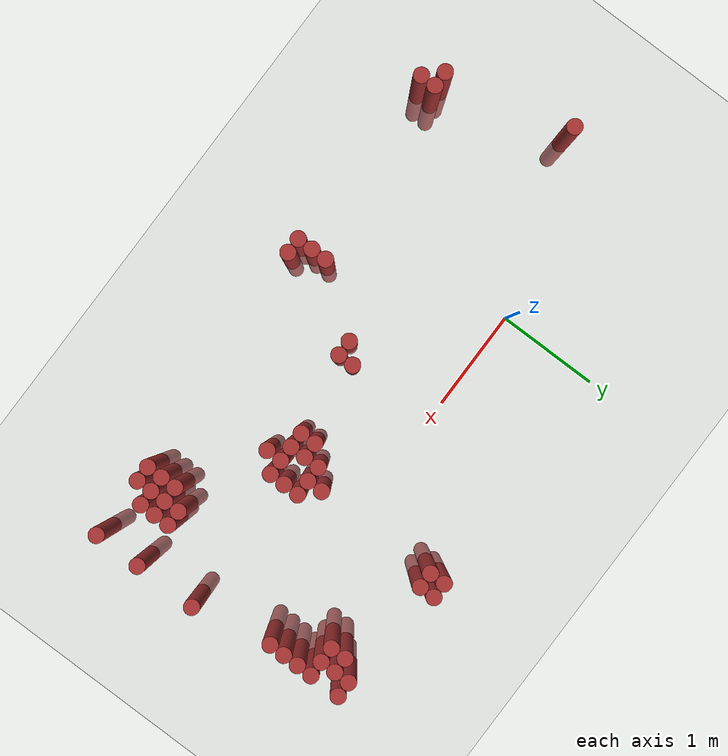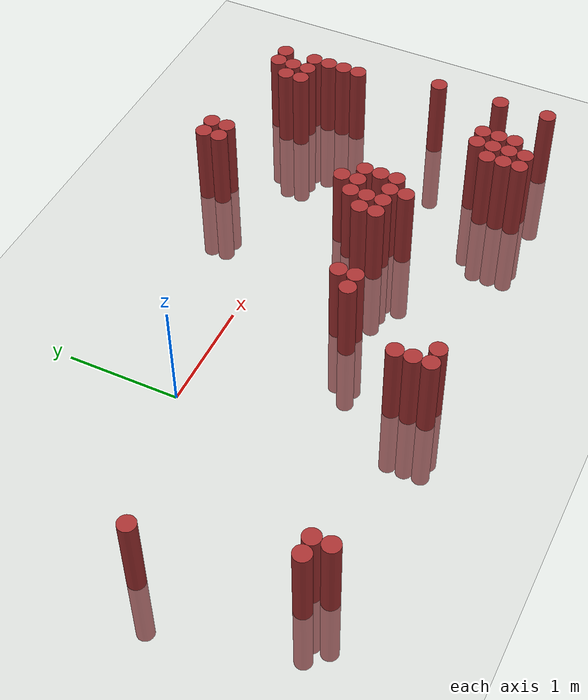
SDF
<sdf version="1.6">
 <world name="default">
  <model name="ground_plane">
   <static>1</static>
   <link name="link">
    <collision name="collision">
     <geometry><plane><normal>0 0 1</normal><size>100 100</size></plane></geometry>
     <surface><friction><ode><mu>100</mu><mu2>50</mu2></ode></friction></surface>
    </collision>
    <visual name="visual">
     <cast_shadows>0</cast_shadows>
     <geometry><plane><normal>0 0 1</normal><size>100 100</size></plane></geometry>
     <material>
      <script><uri>file://media/materials/scripts/gazebo.material</uri><name>Gazebo/Grey</name></script>
     </material>
    </visual>
   </link>
  </model>
  <model name="unit_cylinder_326">
   <static>1</static>
   <pose>-1.625000 -0.575000 0.000000 0.000000 0.000000 0.000000</pose>
   <link name="link">
    <inertial>
     <mass>1</mass>
     <inertia><ixx>0.145833</ixx><ixy>0</ixy><ixz>0</ixz><iyy>0.145833</iyy><iyz>0</iyz><izz>0.125</izz></inertia>
    </inertial>
    <collision name="collision">
     <geometry><cylinder><radius>0.075000</radius><length>1.5</length></cylinder></geometry>
    </collision>
    <visual name="visual">
     <geometry><cylinder><radius>0.075000</radius><length>1.5</length></cylinder></geometry>
     <material>
      <ambient>0.648000 0.192000 0.192000 1</ambient>
      <diffuse>0.648000 0.192000 0.192000 1</diffuse>
     </material>
     <material>
      <script><name>Gazebo/Grey</name><uri>file://media/materials/scripts/gazebo.material</uri></script>
     </material>
    </visual>
   </link>
  </model>
  <model name="unit_cylinder_327">
   <static>1</static>
   <pose>-1.325000 -1.775000 0.000000 0.000000 0.000000 0.000000</pose>
   <link name="link">
    <inertial>
     <mass>1</mass>
     <inertia><ixx>0.145833</ixx><ixy>0</ixy><ixz>0</ixz><iyy>0.145833</iyy><iyz>0</iyz><izz>0.125</izz></inertia>
    </inertial>
    <collision name="collision">
     <geometry><cylinder><radius>0.075000</radius><length>1.5</length></cylinder></geometry>
    </collision>
    <visual name="visual">
     <geometry><cylinder><radius>0.075000</radius><length>1.5</length></cylinder></geometry>
     <material>
      <ambient>0.648000 0.192000 0.192000 1</ambient>
      <diffuse>0.648000 0.192000 0.192000 1</diffuse>
     </material>
     <material>
      <script><name>Gazebo/Grey</name><uri>file://media/materials/scripts/gazebo.material</uri></script>
     </material>
    </visual>
   </link>
  </model>
  <model name="unit_cylinder_329">
   <static>1</static>
   <pose>-1.175000 -1.925000 0.000000 0.000000 0.000000 0.000000</pose>
   <link name="link">
    <inertial>
     <mass>1</mass>
     <inertia><ixx>0.145833</ixx><ixy>0</ixy><ixz>0</ixz><iyy>0.145833</iyy><iyz>0</iyz><izz>0.125</izz></inertia>
    </inertial>
    <collision name="collision">
     <geometry><cylinder><radius>0.075000</radius><length>1.5</length></cylinder></geometry>
    </collision>
    <visual name="visual">
     <geometry><cylinder><radius>0.075000</radius><length>1.5</length></cylinder></geometry>
     <material>
      <ambient>0.648000 0.192000 0.192000 1</ambient>
      <diffuse>0.648000 0.192000 0.192000 1</diffuse>
     </material>
     <material>
      <script><name>Gazebo/Grey</name><uri>file://media/materials/scripts/gazebo.material</uri></script>
     </material>
    </visual>
   </link>
  </model>
  <model name="unit_cylinder_330">
   <static>1</static>
   <pose>-1.175000 -1.775000 0.000000 0.000000 0.000000 0.000000</pose>
   <link name="link">
    <inertial>
     <mass>1</mass>
     <inertia><ixx>0.145833</ixx><ixy>0</ixy><ixz>0</ixz><iyy>0.145833</iyy><iyz>0</iyz><izz>0.125</izz></inertia>
    </inertial>
    <collision name="collision">
     <geometry><cylinder><radius>0.075000</radius><length>1.5</length></cylinder></geometry>
    </collision>
    <visual name="visual">
     <geometry><cylinder><radius>0.075000</radius><length>1.5</length></cylinder></geometry>
     <material>
      <ambient>0.648000 0.192000 0.192000 1</ambient>
      <diffuse>0.648000 0.192000 0.192000 1</diffuse>
     </material>
     <material>
      <script><name>Gazebo/Grey</name><uri>file://media/materials/scripts/gazebo.material</uri></script>
     </material>
    </visual>
   </link>
  </model>
  <model name="unit_cylinder_379">
   <static>1</static>
   <pose>0.625000 -1.925000 0.000000 0.000000 0.000000 0.000000</pose>
   <link name="link">
    <inertial>
     <mass>1</mass>
     <inertia><ixx>0.145833</ixx><ixy>0</ixy><ixz>0</ixz><iyy>0.145833</iyy><iyz>0</iyz><izz>0.125</izz></inertia>
    </inertial>
    <collision name="collision">
     <geometry><cylinder><radius>0.075000</radius><length>1.5</length></cylinder></geometry>
    </collision>
    <visual name="visual">
     <geometry><cylinder><radius>0.075000</radius><length>1.5</length></cylinder></geometry>
     <material>
      <ambient>0.648000 0.192000 0.192000 1</ambient>
      <diffuse>0.648000 0.192000 0.192000 1</diffuse>
     </material>
     <material>
      <script><name>Gazebo/Grey</name><uri>file://media/materials/scripts/gazebo.material</uri></script>
     </material>
    </visual>
   </link>
  </model>
  <model name="unit_cylinder_380">
   <static>1</static>
   <pose>0.625000 -1.775000 0.000000 0.000000 0.000000 0.000000</pose>
   <link name="link">
    <inertial>
     <mass>1</mass>
     <inertia><ixx>0.145833</ixx><ixy>0</ixy><ixz>0</ixz><iyy>0.145833</iyy><iyz>0</iyz><izz>0.125</izz></inertia>
    </inertial>
    <collision name="collision">
     <geometry><cylinder><radius>0.075000</radius><length>1.5</length></cylinder></geometry>
    </collision>
    <visual name="visual">
     <geometry><cylinder><radius>0.075000</radius><length>1.5</length></cylinder></geometry>
     <material>
      <ambient>0.648000 0.192000 0.192000 1</ambient>
      <diffuse>0.648000 0.192000 0.192000 1</diffuse>
     </material>
     <material>
      <script><name>Gazebo/Grey</name><uri>file://media/materials/scripts/gazebo.material</uri></script>
     </material>
    </visual>
   </link>
  </model>
  <model name="unit_cylinder_381">
   <static>1</static>
   <pose>0.625000 -1.625000 0.000000 0.000000 0.000000 0.000000</pose>
   <link name="link">
    <inertial>
     <mass>1</mass>
     <inertia><ixx>0.145833</ixx><ixy>0</ixy><ixz>0</ixz><iyy>0.145833</iyy><iyz>0</iyz><izz>0.125</izz></inertia>
    </inertial>
    <collision name="collision">
     <geometry><cylinder><radius>0.075000</radius><length>1.5</length></cylinder></geometry>
    </collision>
    <visual name="visual">
     <geometry><cylinder><radius>0.075000</radius><length>1.5</length></cylinder></geometry>
     <material>
      <ambient>0.648000 0.192000 0.192000 1</ambient>
      <diffuse>0.648000 0.192000 0.192000 1</diffuse>
     </material>
     <material>
      <script><name>Gazebo/Grey</name><uri>file://media/materials/scripts/gazebo.material</uri></script>
     </material>
    </visual>
   </link>
  </model>
  <model name="unit_cylinder_383">
   <static>1</static>
   <pose>0.775000 -1.925000 0.000000 0.000000 0.000000 0.000000</pose>
   <link name="link">
    <inertial>
     <mass>1</mass>
     <inertia><ixx>0.145833</ixx><ixy>0</ixy><ixz>0</ixz><iyy>0.145833</iyy><iyz>0</iyz><izz>0.125</izz></inertia>
    </inertial>
    <collision name="collision">
     <geometry><cylinder><radius>0.075000</radius><length>1.5</length></cylinder></geometry>
    </collision>
    <visual name="visual">
     <geometry><cylinder><radius>0.075000</radius><length>1.5</length></cylinder></geometry>
     <material>
      <ambient>0.648000 0.192000 0.192000 1</ambient>
      <diffuse>0.648000 0.192000 0.192000 1</diffuse>
     </material>
     <material>
      <script><name>Gazebo/Grey</name><uri>file://media/materials/scripts/gazebo.material</uri></script>
     </material>
    </visual>
   </link>
  </model>
  <model name="unit_cylinder_384">
   <static>1</static>
   <pose>1.075000 -1.025000 0.000000 0.000000 0.000000 0.000000</pose>
   <link name="link">
    <inertial>
     <mass>1</mass>
     <inertia><ixx>0.145833</ixx><ixy>0</ixy><ixz>0</ixz><iyy>0.145833</iyy><iyz>0</iyz><izz>0.125</izz></inertia>
    </inertial>
    <collision name="collision">
     <geometry><cylinder><radius>0.075000</radius><length>1.5</length></cylinder></geometry>
    </collision>
    <visual name="visual">
     <geometry><cylinder><radius>0.075000</radius><length>1.5</length></cylinder></geometry>
     <material>
      <ambient>0.648000 0.192000 0.192000 1</ambient>
      <diffuse>0.648000 0.192000 0.192000 1</diffuse>
     </material>
     <material>
      <script><name>Gazebo/Grey</name><uri>file://media/materials/scripts/gazebo.material</uri></script>
     </material>
    </visual>
   </link>
  </model>
  <model name="unit_cylinder_385">
   <static>1</static>
   <pose>1.225000 -1.025000 0.000000 0.000000 0.000000 0.000000</pose>
   <link name="link">
    <inertial>
     <mass>1</mass>
     <inertia><ixx>0.145833</ixx><ixy>0</ixy><ixz>0</ixz><iyy>0.145833</iyy><iyz>0</iyz><izz>0.125</izz></inertia>
    </inertial>
    <collision name="collision">
     <geometry><cylinder><radius>0.075000</radius><length>1.5</length></cylinder></geometry>
    </collision>
    <visual name="visual">
     <geometry><cylinder><radius>0.075000</radius><length>1.5</length></cylinder></geometry>
     <material>
      <ambient>0.648000 0.192000 0.192000 1</ambient>
      <diffuse>0.648000 0.192000 0.192000 1</diffuse>
     </material>
     <material>
      <script><name>Gazebo/Grey</name><uri>file://media/materials/scripts/gazebo.material</uri></script>
     </material>
    </visual>
   </link>
  </model>
  <model name="unit_cylinder_386">
   <static>1</static>
   <pose>1.225000 -0.875000 0.000000 0.000000 0.000000 0.000000</pose>
   <link name="link">
    <inertial>
     <mass>1</mass>
     <inertia><ixx>0.145833</ixx><ixy>0</ixy><ixz>0</ixz><iyy>0.145833</iyy><iyz>0</iyz><izz>0.125</izz></inertia>
    </inertial>
    <collision name="collision">
     <geometry><cylinder><radius>0.075000</radius><length>1.5</length></cylinder></geometry>
    </collision>
    <visual name="visual">
     <geometry><cylinder><radius>0.075000</radius><length>1.5</length></cylinder></geometry>
     <material>
      <ambient>0.648000 0.192000 0.192000 1</ambient>
      <diffuse>0.648000 0.192000 0.192000 1</diffuse>
     </material>
     <material>
      <script><name>Gazebo/Grey</name><uri>file://media/materials/scripts/gazebo.material</uri></script>
     </material>
    </visual>
   </link>
  </model>
  <model name="unit_cylinder_390">
   <static>1</static>
   <pose>1.975000 -0.875000 0.000000 0.000000 0.000000 0.000000</pose>
   <link name="link">
    <inertial>
     <mass>1</mass>
     <inertia><ixx>0.145833</ixx><ixy>0</ixy><ixz>0</ixz><iyy>0.145833</iyy><iyz>0</iyz><izz>0.125</izz></inertia>
    </inertial>
    <collision name="collision">
     <geometry><cylinder><radius>0.075000</radius><length>1.5</length></cylinder></geometry>
    </collision>
    <visual name="visual">
     <geometry><cylinder><radius>0.075000</radius><length>1.5</length></cylinder></geometry>
     <material>
      <ambient>0.648000 0.192000 0.192000 1</ambient>
      <diffuse>0.648000 0.192000 0.192000 1</diffuse>
     </material>
     <material>
      <script><name>Gazebo/Grey</name><uri>file://media/materials/scripts/gazebo.material</uri></script>
     </material>
    </visual>
   </link>
  </model>
  <model name="unit_cylinder_391">
   <static>1</static>
   <pose>1.975000 -0.725000 0.000000 0.000000 0.000000 0.000000</pose>
   <link name="link">
    <inertial>
     <mass>1</mass>
     <inertia><ixx>0.145833</ixx><ixy>0</ixy><ixz>0</ixz><iyy>0.145833</iyy><iyz>0</iyz><izz>0.125</izz></inertia>
    </inertial>
    <collision name="collision">
     <geometry><cylinder><radius>0.075000</radius><length>1.5</length></cylinder></geometry>
    </collision>
    <visual name="visual">
     <geometry><cylinder><radius>0.075000</radius><length>1.5</length></cylinder></geometry>
     <material>
      <ambient>0.648000 0.192000 0.192000 1</ambient>
      <diffuse>0.648000 0.192000 0.192000 1</diffuse>
     </material>
     <material>
      <script><name>Gazebo/Grey</name><uri>file://media/materials/scripts/gazebo.material</uri></script>
     </material>
    </visual>
   </link>
  </model>
  <model name="unit_cylinder_392">
   <static>1</static>
   <pose>2.125000 -0.875000 0.000000 0.000000 0.000000 0.000000</pose>
   <link name="link">
    <inertial>
     <mass>1</mass>
     <inertia><ixx>0.145833</ixx><ixy>0</ixy><ixz>0</ixz><iyy>0.145833</iyy><iyz>0</iyz><izz>0.125</izz></inertia>
    </inertial>
    <collision name="collision">
     <geometry><cylinder><radius>0.075000</radius><length>1.5</length></cylinder></geometry>
    </collision>
    <visual name="visual">
     <geometry><cylinder><radius>0.075000</radius><length>1.5</length></cylinder></geometry>
     <material>
      <ambient>0.648000 0.192000 0.192000 1</ambient>
      <diffuse>0.648000 0.192000 0.192000 1</diffuse>
     </material>
     <material>
      <script><name>Gazebo/Grey</name><uri>file://media/materials/scripts/gazebo.material</uri></script>
     </material>
    </visual>
   </link>
  </model>
  <model name="unit_cylinder_393">
   <static>1</static>
   <pose>2.125000 -0.725000 0.000000 0.000000 0.000000 0.000000</pose>
   <link name="link">
    <inertial>
     <mass>1</mass>
     <inertia><ixx>0.145833</ixx><ixy>0</ixy><ixz>0</ixz><iyy>0.145833</iyy><iyz>0</iyz><izz>0.125</izz></inertia>
    </inertial>
    <collision name="collision">
     <geometry><cylinder><radius>0.075000</radius><length>1.5</length></cylinder></geometry>
    </collision>
    <visual name="visual">
     <geometry><cylinder><radius>0.075000</radius><length>1.5</length></cylinder></geometry>
     <material>
      <ambient>0.648000 0.192000 0.192000 1</ambient>
      <diffuse>0.648000 0.192000 0.192000 1</diffuse>
     </material>
     <material>
      <script><name>Gazebo/Grey</name><uri>file://media/materials/scripts/gazebo.material</uri></script>
     </material>
    </visual>
   </link>
  </model>
  <model name="unit_cylinder_394">
   <static>1</static>
   <pose>2.125000 -0.575000 0.000000 0.000000 0.000000 0.000000</pose>
   <link name="link">
    <inertial>
     <mass>1</mass>
     <inertia><ixx>0.145833</ixx><ixy>0</ixy><ixz>0</ixz><iyy>0.145833</iyy><iyz>0</iyz><izz>0.125</izz></inertia>
    </inertial>
    <collision name="collision">
     <geometry><cylinder><radius>0.075000</radius><length>1.5</length></cylinder></geometry>
    </collision>
    <visual name="visual">
     <geometry><cylinder><radius>0.075000</radius><length>1.5</length></cylinder></geometry>
     <material>
      <ambient>0.648000 0.192000 0.192000 1</ambient>
      <diffuse>0.648000 0.192000 0.192000 1</diffuse>
     </material>
     <material>
      <script><name>Gazebo/Grey</name><uri>file://media/materials/scripts/gazebo.material</uri></script>
     </material>
    </visual>
   </link>
  </model>
  <model name="unit_cylinder_395">
   <static>1</static>
   <pose>2.275000 -1.025000 0.000000 0.000000 0.000000 0.000000</pose>
   <link name="link">
    <inertial>
     <mass>1</mass>
     <inertia><ixx>0.145833</ixx><ixy>0</ixy><ixz>0</ixz><iyy>0.145833</iyy><iyz>0</iyz><izz>0.125</izz></inertia>
    </inertial>
    <collision name="collision">
     <geometry><cylinder><radius>0.075000</radius><length>1.5</length></cylinder></geometry>
    </collision>
    <visual name="visual">
     <geometry><cylinder><radius>0.075000</radius><length>1.5</length></cylinder></geometry>
     <material>
      <ambient>0.648000 0.192000 0.192000 1</ambient>
      <diffuse>0.648000 0.192000 0.192000 1</diffuse>
     </material>
     <material>
      <script><name>Gazebo/Grey</name><uri>file://media/materials/scripts/gazebo.material</uri></script>
     </material>
    </visual>
   </link>
  </model>
  <model name="unit_cylinder_396">
   <static>1</static>
   <pose>2.275000 -0.875000 0.000000 0.000000 0.000000 0.000000</pose>
   <link name="link">
    <inertial>
     <mass>1</mass>
     <inertia><ixx>0.145833</ixx><ixy>0</ixy><ixz>0</ixz><iyy>0.145833</iyy><iyz>0</iyz><izz>0.125</izz></inertia>
    </inertial>
    <collision name="collision">
     <geometry><cylinder><radius>0.075000</radius><length>1.5</length></cylinder></geometry>
    </collision>
    <visual name="visual">
     <geometry><cylinder><radius>0.075000</radius><length>1.5</length></cylinder></geometry>
     <material>
      <ambient>0.648000 0.192000 0.192000 1</ambient>
      <diffuse>0.648000 0.192000 0.192000 1</diffuse>
     </material>
     <material>
      <script><name>Gazebo/Grey</name><uri>file://media/materials/scripts/gazebo.material</uri></script>
     </material>
    </visual>
   </link>
  </model>
  <model name="unit_cylinder_397">
   <static>1</static>
   <pose>2.275000 -0.575000 0.000000 0.000000 0.000000 0.000000</pose>
   <link name="link">
    <inertial>
     <mass>1</mass>
     <inertia><ixx>0.145833</ixx><ixy>0</ixy><ixz>0</ixz><iyy>0.145833</iyy><iyz>0</iyz><izz>0.125</izz></inertia>
    </inertial>
    <collision name="collision">
     <geometry><cylinder><radius>0.075000</radius><length>1.5</length></cylinder></geometry>
    </collision>
    <visual name="visual">
     <geometry><cylinder><radius>0.075000</radius><length>1.5</length></cylinder></geometry>
     <material>
      <ambient>0.648000 0.192000 0.192000 1</ambient>
      <diffuse>0.648000 0.192000 0.192000 1</diffuse>
     </material>
     <material>
      <script><name>Gazebo/Grey</name><uri>file://media/materials/scripts/gazebo.material</uri></script>
     </material>
    </visual>
   </link>
  </model>
  <model name="unit_cylinder_398">
   <static>1</static>
   <pose>2.275000 -0.425000 0.000000 0.000000 0.000000 0.000000</pose>
   <link name="link">
    <inertial>
     <mass>1</mass>
     <inertia><ixx>0.145833</ixx><ixy>0</ixy><ixz>0</ixz><iyy>0.145833</iyy><iyz>0</iyz><izz>0.125</izz></inertia>
    </inertial>
    <collision name="collision">
     <geometry><cylinder><radius>0.075000</radius><length>1.5</length></cylinder></geometry>
    </collision>
    <visual name="visual">
     <geometry><cylinder><radius>0.075000</radius><length>1.5</length></cylinder></geometry>
     <material>
      <ambient>0.648000 0.192000 0.192000 1</ambient>
      <diffuse>0.648000 0.192000 0.192000 1</diffuse>
     </material>
     <material>
      <script><name>Gazebo/Grey</name><uri>file://media/materials/scripts/gazebo.material</uri></script>
     </material>
    </visual>
   </link>
  </model>
  <model name="unit_cylinder_399">
   <static>1</static>
   <pose>2.275000 0.775000 0.000000 0.000000 0.000000 0.000000</pose>
   <link name="link">
    <inertial>
     <mass>1</mass>
     <inertia><ixx>0.145833</ixx><ixy>0</ixy><ixz>0</ixz><iyy>0.145833</iyy><iyz>0</iyz><izz>0.125</izz></inertia>
    </inertial>
    <collision name="collision">
     <geometry><cylinder><radius>0.075000</radius><length>1.5</length></cylinder></geometry>
    </collision>
    <visual name="visual">
     <geometry><cylinder><radius>0.075000</radius><length>1.5</length></cylinder></geometry>
     <material>
      <ambient>0.648000 0.192000 0.192000 1</ambient>
      <diffuse>0.648000 0.192000 0.192000 1</diffuse>
     </material>
     <material>
      <script><name>Gazebo/Grey</name><uri>file://media/materials/scripts/gazebo.material</uri></script>
     </material>
    </visual>
   </link>
  </model>
  <model name="unit_cylinder_400">
   <static>1</static>
   <pose>2.275000 0.925000 0.000000 0.000000 0.000000 0.000000</pose>
   <link name="link">
    <inertial>
     <mass>1</mass>
     <inertia><ixx>0.145833</ixx><ixy>0</ixy><ixz>0</ixz><iyy>0.145833</iyy><iyz>0</iyz><izz>0.125</izz></inertia>
    </inertial>
    <collision name="collision">
     <geometry><cylinder><radius>0.075000</radius><length>1.5</length></cylinder></geometry>
    </collision>
    <visual name="visual">
     <geometry><cylinder><radius>0.075000</radius><length>1.5</length></cylinder></geometry>
     <material>
      <ambient>0.648000 0.192000 0.192000 1</ambient>
      <diffuse>0.648000 0.192000 0.192000 1</diffuse>
     </material>
     <material>
      <script><name>Gazebo/Grey</name><uri>file://media/materials/scripts/gazebo.material</uri></script>
     </material>
    </visual>
   </link>
  </model>
  <model name="unit_cylinder_401">
   <static>1</static>
   <pose>2.425000 -0.875000 0.000000 0.000000 0.000000 0.000000</pose>
   <link name="link">
    <inertial>
     <mass>1</mass>
     <inertia><ixx>0.145833</ixx><ixy>0</ixy><ixz>0</ixz><iyy>0.145833</iyy><iyz>0</iyz><izz>0.125</izz></inertia>
    </inertial>
    <collision name="collision">
     <geometry><cylinder><radius>0.075000</radius><length>1.5</length></cylinder></geometry>
    </collision>
    <visual name="visual">
     <geometry><cylinder><radius>0.075000</radius><length>1.5</length></cylinder></geometry>
     <material>
      <ambient>0.648000 0.192000 0.192000 1</ambient>
      <diffuse>0.648000 0.192000 0.192000 1</diffuse>
     </material>
     <material>
      <script><name>Gazebo/Grey</name><uri>file://media/materials/scripts/gazebo.material</uri></script>
     </material>
    </visual>
   </link>
  </model>
  <model name="unit_cylinder_402">
   <static>1</static>
   <pose>2.425000 -0.725000 0.000000 0.000000 0.000000 0.000000</pose>
   <link name="link">
    <inertial>
     <mass>1</mass>
     <inertia><ixx>0.145833</ixx><ixy>0</ixy><ixz>0</ixz><iyy>0.145833</iyy><iyz>0</iyz><izz>0.125</izz></inertia>
    </inertial>
    <collision name="collision">
     <geometry><cylinder><radius>0.075000</radius><length>1.5</length></cylinder></geometry>
    </collision>
    <visual name="visual">
     <geometry><cylinder><radius>0.075000</radius><length>1.5</length></cylinder></geometry>
     <material>
      <ambient>0.648000 0.192000 0.192000 1</ambient>
      <diffuse>0.648000 0.192000 0.192000 1</diffuse>
     </material>
     <material>
      <script><name>Gazebo/Grey</name><uri>file://media/materials/scripts/gazebo.material</uri></script>
     </material>
    </visual>
   </link>
  </model>
  <model name="unit_cylinder_403">
   <static>1</static>
   <pose>2.425000 -0.575000 0.000000 0.000000 0.000000 0.000000</pose>
   <link name="link">
    <inertial>
     <mass>1</mass>
     <inertia><ixx>0.145833</ixx><ixy>0</ixy><ixz>0</ixz><iyy>0.145833</iyy><iyz>0</iyz><izz>0.125</izz></inertia>
    </inertial>
    <collision name="collision">
     <geometry><cylinder><radius>0.075000</radius><length>1.5</length></cylinder></geometry>
    </collision>
    <visual name="visual">
     <geometry><cylinder><radius>0.075000</radius><length>1.5</length></cylinder></geometry>
     <material>
      <ambient>0.648000 0.192000 0.192000 1</ambient>
      <diffuse>0.648000 0.192000 0.192000 1</diffuse>
     </material>
     <material>
      <script><name>Gazebo/Grey</name><uri>file://media/materials/scripts/gazebo.material</uri></script>
     </material>
    </visual>
   </link>
  </model>
  <model name="unit_cylinder_404">
   <static>1</static>
   <pose>2.425000 0.775000 0.000000 0.000000 0.000000 0.000000</pose>
   <link name="link">
    <inertial>
     <mass>1</mass>
     <inertia><ixx>0.145833</ixx><ixy>0</ixy><ixz>0</ixz><iyy>0.145833</iyy><iyz>0</iyz><izz>0.125</izz></inertia>
    </inertial>
    <collision name="collision">
     <geometry><cylinder><radius>0.075000</radius><length>1.5</length></cylinder></geometry>
    </collision>
    <visual name="visual">
     <geometry><cylinder><radius>0.075000</radius><length>1.5</length></cylinder></geometry>
     <material>
      <ambient>0.648000 0.192000 0.192000 1</ambient>
      <diffuse>0.648000 0.192000 0.192000 1</diffuse>
     </material>
     <material>
      <script><name>Gazebo/Grey</name><uri>file://media/materials/scripts/gazebo.material</uri></script>
     </material>
    </visual>
   </link>
  </model>
  <model name="unit_cylinder_405">
   <static>1</static>
   <pose>2.425000 0.925000 0.000000 0.000000 0.000000 0.000000</pose>
   <link name="link">
    <inertial>
     <mass>1</mass>
     <inertia><ixx>0.145833</ixx><ixy>0</ixy><ixz>0</ixz><iyy>0.145833</iyy><iyz>0</iyz><izz>0.125</izz></inertia>
    </inertial>
    <collision name="collision">
     <geometry><cylinder><radius>0.075000</radius><length>1.5</length></cylinder></geometry>
    </collision>
    <visual name="visual">
     <geometry><cylinder><radius>0.075000</radius><length>1.5</length></cylinder></geometry>
     <material>
      <ambient>0.648000 0.192000 0.192000 1</ambient>
      <diffuse>0.648000 0.192000 0.192000 1</diffuse>
     </material>
     <material>
      <script><name>Gazebo/Grey</name><uri>file://media/materials/scripts/gazebo.material</uri></script>
     </material>
    </visual>
   </link>
  </model>
  <model name="unit_cylinder_413">
   <static>1</static>
   <pose>3.025000 -1.775000 0.000000 0.000000 0.000000 0.000000</pose>
   <link name="link">
    <inertial>
     <mass>1</mass>
     <inertia><ixx>0.145833</ixx><ixy>0</ixy><ixz>0</ixz><iyy>0.145833</iyy><iyz>0</iyz><izz>0.125</izz></inertia>
    </inertial>
    <collision name="collision">
     <geometry><cylinder><radius>0.075000</radius><length>1.5</length></cylinder></geometry>
    </collision>
    <visual name="visual">
     <geometry><cylinder><radius>0.075000</radius><length>1.5</length></cylinder></geometry>
     <material>
      <ambient>0.648000 0.192000 0.192000 1</ambient>
      <diffuse>0.648000 0.192000 0.192000 1</diffuse>
     </material>
     <material>
      <script><name>Gazebo/Grey</name><uri>file://media/materials/scripts/gazebo.material</uri></script>
     </material>
    </visual>
   </link>
  </model>
  <model name="unit_cylinder_414">
   <static>1</static>
   <pose>3.025000 -1.625000 0.000000 0.000000 0.000000 0.000000</pose>
   <link name="link">
    <inertial>
     <mass>1</mass>
     <inertia><ixx>0.145833</ixx><ixy>0</ixy><ixz>0</ixz><iyy>0.145833</iyy><iyz>0</iyz><izz>0.125</izz></inertia>
    </inertial>
    <collision name="collision">
     <geometry><cylinder><radius>0.075000</radius><length>1.5</length></cylinder></geometry>
    </collision>
    <visual name="visual">
     <geometry><cylinder><radius>0.075000</radius><length>1.5</length></cylinder></geometry>
     <material>
      <ambient>0.648000 0.192000 0.192000 1</ambient>
      <diffuse>0.648000 0.192000 0.192000 1</diffuse>
     </material>
     <material>
      <script><name>Gazebo/Grey</name><uri>file://media/materials/scripts/gazebo.material</uri></script>
     </material>
    </visual>
   </link>
  </model>
  <model name="unit_cylinder_415">
   <static>1</static>
   <pose>3.025000 -1.475000 0.000000 0.000000 0.000000 0.000000</pose>
   <link name="link">
    <inertial>
     <mass>1</mass>
     <inertia><ixx>0.145833</ixx><ixy>0</ixy><ixz>0</ixz><iyy>0.145833</iyy><iyz>0</iyz><izz>0.125</izz></inertia>
    </inertial>
    <collision name="collision">
     <geometry><cylinder><radius>0.075000</radius><length>1.5</length></cylinder></geometry>
    </collision>
    <visual name="visual">
     <geometry><cylinder><radius>0.075000</radius><length>1.5</length></cylinder></geometry>
     <material>
      <ambient>0.648000 0.192000 0.192000 1</ambient>
      <diffuse>0.648000 0.192000 0.192000 1</diffuse>
     </material>
     <material>
      <script><name>Gazebo/Grey</name><uri>file://media/materials/scripts/gazebo.material</uri></script>
     </material>
    </visual>
   </link>
  </model>
  <model name="unit_cylinder_416">
   <static>1</static>
   <pose>3.175000 -1.775000 0.000000 0.000000 0.000000 0.000000</pose>
   <link name="link">
    <inertial>
     <mass>1</mass>
     <inertia><ixx>0.145833</ixx><ixy>0</ixy><ixz>0</ixz><iyy>0.145833</iyy><iyz>0</iyz><izz>0.125</izz></inertia>
    </inertial>
    <collision name="collision">
     <geometry><cylinder><radius>0.075000</radius><length>1.5</length></cylinder></geometry>
    </collision>
    <visual name="visual">
     <geometry><cylinder><radius>0.075000</radius><length>1.5</length></cylinder></geometry>
     <material>
      <ambient>0.648000 0.192000 0.192000 1</ambient>
      <diffuse>0.648000 0.192000 0.192000 1</diffuse>
     </material>
     <material>
      <script><name>Gazebo/Grey</name><uri>file://media/materials/scripts/gazebo.material</uri></script>
     </material>
    </visual>
   </link>
  </model>
  <model name="unit_cylinder_417">
   <static>1</static>
   <pose>3.175000 -1.625000 0.000000 0.000000 0.000000 0.000000</pose>
   <link name="link">
    <inertial>
     <mass>1</mass>
     <inertia><ixx>0.145833</ixx><ixy>0</ixy><ixz>0</ixz><iyy>0.145833</iyy><iyz>0</iyz><izz>0.125</izz></inertia>
    </inertial>
    <collision name="collision">
     <geometry><cylinder><radius>0.075000</radius><length>1.5</length></cylinder></geometry>
    </collision>
    <visual name="visual">
     <geometry><cylinder><radius>0.075000</radius><length>1.5</length></cylinder></geometry>
     <material>
      <ambient>0.648000 0.192000 0.192000 1</ambient>
      <diffuse>0.648000 0.192000 0.192000 1</diffuse>
     </material>
     <material>
      <script><name>Gazebo/Grey</name><uri>file://media/materials/scripts/gazebo.material</uri></script>
     </material>
    </visual>
   </link>
  </model>
  <model name="unit_cylinder_418">
   <static>1</static>
   <pose>3.175000 -1.475000 0.000000 0.000000 0.000000 0.000000</pose>
   <link name="link">
    <inertial>
     <mass>1</mass>
     <inertia><ixx>0.145833</ixx><ixy>0</ixy><ixz>0</ixz><iyy>0.145833</iyy><iyz>0</iyz><izz>0.125</izz></inertia>
    </inertial>
    <collision name="collision">
     <geometry><cylinder><radius>0.075000</radius><length>1.5</length></cylinder></geometry>
    </collision>
    <visual name="visual">
     <geometry><cylinder><radius>0.075000</radius><length>1.5</length></cylinder></geometry>
     <material>
      <ambient>0.648000 0.192000 0.192000 1</ambient>
      <diffuse>0.648000 0.192000 0.192000 1</diffuse>
     </material>
     <material>
      <script><name>Gazebo/Grey</name><uri>file://media/materials/scripts/gazebo.material</uri></script>
     </material>
    </visual>
   </link>
  </model>
  <model name="unit_cylinder_419">
   <static>1</static>
   <pose>3.175000 -1.325000 0.000000 0.000000 0.000000 0.000000</pose>
   <link name="link">
    <inertial>
     <mass>1</mass>
     <inertia><ixx>0.145833</ixx><ixy>0</ixy><ixz>0</ixz><iyy>0.145833</iyy><iyz>0</iyz><izz>0.125</izz></inertia>
    </inertial>
    <collision name="collision">
     <geometry><cylinder><radius>0.075000</radius><length>1.5</length></cylinder></geometry>
    </collision>
    <visual name="visual">
     <geometry><cylinder><radius>0.075000</radius><length>1.5</length></cylinder></geometry>
     <material>
      <ambient>0.648000 0.192000 0.192000 1</ambient>
      <diffuse>0.648000 0.192000 0.192000 1</diffuse>
     </material>
     <material>
      <script><name>Gazebo/Grey</name><uri>file://media/materials/scripts/gazebo.material</uri></script>
     </material>
    </visual>
   </link>
  </model>
  <model name="unit_cylinder_420">
   <static>1</static>
   <pose>3.325000 -1.625000 0.000000 0.000000 0.000000 0.000000</pose>
   <link name="link">
    <inertial>
     <mass>1</mass>
     <inertia><ixx>0.145833</ixx><ixy>0</ixy><ixz>0</ixz><iyy>0.145833</iyy><iyz>0</iyz><izz>0.125</izz></inertia>
    </inertial>
    <collision name="collision">
     <geometry><cylinder><radius>0.075000</radius><length>1.5</length></cylinder></geometry>
    </collision>
    <visual name="visual">
     <geometry><cylinder><radius>0.075000</radius><length>1.5</length></cylinder></geometry>
     <material>
      <ambient>0.648000 0.192000 0.192000 1</ambient>
      <diffuse>0.648000 0.192000 0.192000 1</diffuse>
     </material>
     <material>
      <script><name>Gazebo/Grey</name><uri>file://media/materials/scripts/gazebo.material</uri></script>
     </material>
    </visual>
   </link>
  </model>
  <model name="unit_cylinder_421">
   <static>1</static>
   <pose>3.325000 -1.475000 0.000000 0.000000 0.000000 0.000000</pose>
   <link name="link">
    <inertial>
     <mass>1</mass>
     <inertia><ixx>0.145833</ixx><ixy>0</ixy><ixz>0</ixz><iyy>0.145833</iyy><iyz>0</iyz><izz>0.125</izz></inertia>
    </inertial>
    <collision name="collision">
     <geometry><cylinder><radius>0.075000</radius><length>1.5</length></cylinder></geometry>
    </collision>
    <visual name="visual">
     <geometry><cylinder><radius>0.075000</radius><length>1.5</length></cylinder></geometry>
     <material>
      <ambient>0.648000 0.192000 0.192000 1</ambient>
      <diffuse>0.648000 0.192000 0.192000 1</diffuse>
     </material>
     <material>
      <script><name>Gazebo/Grey</name><uri>file://media/materials/scripts/gazebo.material</uri></script>
     </material>
    </visual>
   </link>
  </model>
  <model name="unit_cylinder_422">
   <static>1</static>
   <pose>3.325000 -1.325000 0.000000 0.000000 0.000000 0.000000</pose>
   <link name="link">
    <inertial>
     <mass>1</mass>
     <inertia><ixx>0.145833</ixx><ixy>0</ixy><ixz>0</ixz><iyy>0.145833</iyy><iyz>0</iyz><izz>0.125</izz></inertia>
    </inertial>
    <collision name="collision">
     <geometry><cylinder><radius>0.075000</radius><length>1.5</length></cylinder></geometry>
    </collision>
    <visual name="visual">
     <geometry><cylinder><radius>0.075000</radius><length>1.5</length></cylinder></geometry>
     <material>
      <ambient>0.648000 0.192000 0.192000 1</ambient>
      <diffuse>0.648000 0.192000 0.192000 1</diffuse>
     </material>
     <material>
      <script><name>Gazebo/Grey</name><uri>file://media/materials/scripts/gazebo.material</uri></script>
     </material>
    </visual>
   </link>
  </model>
  <model name="unit_cylinder_423">
   <static>1</static>
   <pose>3.325000 0.475000 0.000000 0.000000 0.000000 0.000000</pose>
   <link name="link">
    <inertial>
     <mass>1</mass>
     <inertia><ixx>0.145833</ixx><ixy>0</ixy><ixz>0</ixz><iyy>0.145833</iyy><iyz>0</iyz><izz>0.125</izz></inertia>
    </inertial>
    <collision name="collision">
     <geometry><cylinder><radius>0.075000</radius><length>1.5</length></cylinder></geometry>
    </collision>
    <visual name="visual">
     <geometry><cylinder><radius>0.075000</radius><length>1.5</length></cylinder></geometry>
     <material>
      <ambient>0.648000 0.192000 0.192000 1</ambient>
      <diffuse>0.648000 0.192000 0.192000 1</diffuse>
     </material>
     <material>
      <script><name>Gazebo/Grey</name><uri>file://media/materials/scripts/gazebo.material</uri></script>
     </material>
    </visual>
   </link>
  </model>
  <model name="unit_cylinder_424">
   <static>1</static>
   <pose>3.325000 0.625000 0.000000 0.000000 0.000000 0.000000</pose>
   <link name="link">
    <inertial>
     <mass>1</mass>
     <inertia><ixx>0.145833</ixx><ixy>0</ixy><ixz>0</ixz><iyy>0.145833</iyy><iyz>0</iyz><izz>0.125</izz></inertia>
    </inertial>
    <collision name="collision">
     <geometry><cylinder><radius>0.075000</radius><length>1.5</length></cylinder></geometry>
    </collision>
    <visual name="visual">
     <geometry><cylinder><radius>0.075000</radius><length>1.5</length></cylinder></geometry>
     <material>
      <ambient>0.648000 0.192000 0.192000 1</ambient>
      <diffuse>0.648000 0.192000 0.192000 1</diffuse>
     </material>
     <material>
      <script><name>Gazebo/Grey</name><uri>file://media/materials/scripts/gazebo.material</uri></script>
     </material>
    </visual>
   </link>
  </model>
  <model name="unit_cylinder_426">
   <static>1</static>
   <pose>3.475000 0.475000 0.000000 0.000000 0.000000 0.000000</pose>
   <link name="link">
    <inertial>
     <mass>1</mass>
     <inertia><ixx>0.145833</ixx><ixy>0</ixy><ixz>0</ixz><iyy>0.145833</iyy><iyz>0</iyz><izz>0.125</izz></inertia>
    </inertial>
    <collision name="collision">
     <geometry><cylinder><radius>0.075000</radius><length>1.5</length></cylinder></geometry>
    </collision>
    <visual name="visual">
     <geometry><cylinder><radius>0.075000</radius><length>1.5</length></cylinder></geometry>
     <material>
      <ambient>0.648000 0.192000 0.192000 1</ambient>
      <diffuse>0.648000 0.192000 0.192000 1</diffuse>
     </material>
     <material>
      <script><name>Gazebo/Grey</name><uri>file://media/materials/scripts/gazebo.material</uri></script>
     </material>
    </visual>
   </link>
  </model>
  <model name="unit_cylinder_427">
   <static>1</static>
   <pose>3.475000 0.625000 0.000000 0.000000 0.000000 0.000000</pose>
   <link name="link">
    <inertial>
     <mass>1</mass>
     <inertia><ixx>0.145833</ixx><ixy>0</ixy><ixz>0</ixz><iyy>0.145833</iyy><iyz>0</iyz><izz>0.125</izz></inertia>
    </inertial>
    <collision name="collision">
     <geometry><cylinder><radius>0.075000</radius><length>1.5</length></cylinder></geometry>
    </collision>
    <visual name="visual">
     <geometry><cylinder><radius>0.075000</radius><length>1.5</length></cylinder></geometry>
     <material>
      <ambient>0.648000 0.192000 0.192000 1</ambient>
      <diffuse>0.648000 0.192000 0.192000 1</diffuse>
     </material>
     <material>
      <script><name>Gazebo/Grey</name><uri>file://media/materials/scripts/gazebo.material</uri></script>
     </material>
    </visual>
   </link>
  </model>
  <model name="unit_cylinder_428">
   <static>1</static>
   <pose>3.475000 0.775000 0.000000 0.000000 0.000000 0.000000</pose>
   <link name="link">
    <inertial>
     <mass>1</mass>
     <inertia><ixx>0.145833</ixx><ixy>0</ixy><ixz>0</ixz><iyy>0.145833</iyy><iyz>0</iyz><izz>0.125</izz></inertia>
    </inertial>
    <collision name="collision">
     <geometry><cylinder><radius>0.075000</radius><length>1.5</length></cylinder></geometry>
    </collision>
    <visual name="visual">
     <geometry><cylinder><radius>0.075000</radius><length>1.5</length></cylinder></geometry>
     <material>
      <ambient>0.648000 0.192000 0.192000 1</ambient>
      <diffuse>0.648000 0.192000 0.192000 1</diffuse>
     </material>
     <material>
      <script><name>Gazebo/Grey</name><uri>file://media/materials/scripts/gazebo.material</uri></script>
     </material>
    </visual>
   </link>
  </model>
  <model name="unit_cylinder_431">
   <static>1</static>
   <pose>3.625000 0.025000 0.000000 0.000000 0.000000 0.000000</pose>
   <link name="link">
    <inertial>
     <mass>1</mass>
     <inertia><ixx>0.145833</ixx><ixy>0</ixy><ixz>0</ixz><iyy>0.145833</iyy><iyz>0</iyz><izz>0.125</izz></inertia>
    </inertial>
    <collision name="collision">
     <geometry><cylinder><radius>0.075000</radius><length>1.5</length></cylinder></geometry>
    </collision>
    <visual name="visual">
     <geometry><cylinder><radius>0.075000</radius><length>1.5</length></cylinder></geometry>
     <material>
      <ambient>0.648000 0.192000 0.192000 1</ambient>
      <diffuse>0.648000 0.192000 0.192000 1</diffuse>
     </material>
     <material>
      <script><name>Gazebo/Grey</name><uri>file://media/materials/scripts/gazebo.material</uri></script>
     </material>
    </visual>
   </link>
  </model>
  <model name="unit_cylinder_432">
   <static>1</static>
   <pose>3.625000 0.175000 0.000000 0.000000 0.000000 0.000000</pose>
   <link name="link">
    <inertial>
     <mass>1</mass>
     <inertia><ixx>0.145833</ixx><ixy>0</ixy><ixz>0</ixz><iyy>0.145833</iyy><iyz>0</iyz><izz>0.125</izz></inertia>
    </inertial>
    <collision name="collision">
     <geometry><cylinder><radius>0.075000</radius><length>1.5</length></cylinder></geometry>
    </collision>
    <visual name="visual">
     <geometry><cylinder><radius>0.075000</radius><length>1.5</length></cylinder></geometry>
     <material>
      <ambient>0.648000 0.192000 0.192000 1</ambient>
      <diffuse>0.648000 0.192000 0.192000 1</diffuse>
     </material>
     <material>
      <script><name>Gazebo/Grey</name><uri>file://media/materials/scripts/gazebo.material</uri></script>
     </material>
    </visual>
   </link>
  </model>
  <model name="unit_cylinder_433">
   <static>1</static>
   <pose>3.625000 0.325000 0.000000 0.000000 0.000000 0.000000</pose>
   <link name="link">
    <inertial>
     <mass>1</mass>
     <inertia><ixx>0.145833</ixx><ixy>0</ixy><ixz>0</ixz><iyy>0.145833</iyy><iyz>0</iyz><izz>0.125</izz></inertia>
    </inertial>
    <collision name="collision">
     <geometry><cylinder><radius>0.075000</radius><length>1.5</length></cylinder></geometry>
    </collision>
    <visual name="visual">
     <geometry><cylinder><radius>0.075000</radius><length>1.5</length></cylinder></geometry>
     <material>
      <ambient>0.648000 0.192000 0.192000 1</ambient>
      <diffuse>0.648000 0.192000 0.192000 1</diffuse>
     </material>
     <material>
      <script><name>Gazebo/Grey</name><uri>file://media/materials/scripts/gazebo.material</uri></script>
     </material>
    </visual>
   </link>
  </model>
  <model name="unit_cylinder_434">
   <static>1</static>
   <pose>3.625000 0.475000 0.000000 0.000000 0.000000 0.000000</pose>
   <link name="link">
    <inertial>
     <mass>1</mass>
     <inertia><ixx>0.145833</ixx><ixy>0</ixy><ixz>0</ixz><iyy>0.145833</iyy><iyz>0</iyz><izz>0.125</izz></inertia>
    </inertial>
    <collision name="collision">
     <geometry><cylinder><radius>0.075000</radius><length>1.5</length></cylinder></geometry>
    </collision>
    <visual name="visual">
     <geometry><cylinder><radius>0.075000</radius><length>1.5</length></cylinder></geometry>
     <material>
      <ambient>0.648000 0.192000 0.192000 1</ambient>
      <diffuse>0.648000 0.192000 0.192000 1</diffuse>
     </material>
     <material>
      <script><name>Gazebo/Grey</name><uri>file://media/materials/scripts/gazebo.material</uri></script>
     </material>
    </visual>
   </link>
  </model>
  <model name="unit_cylinder_435">
   <static>1</static>
   <pose>3.625000 0.775000 0.000000 0.000000 0.000000 0.000000</pose>
   <link name="link">
    <inertial>
     <mass>1</mass>
     <inertia><ixx>0.145833</ixx><ixy>0</ixy><ixz>0</ixz><iyy>0.145833</iyy><iyz>0</iyz><izz>0.125</izz></inertia>
    </inertial>
    <collision name="collision">
     <geometry><cylinder><radius>0.075000</radius><length>1.5</length></cylinder></geometry>
    </collision>
    <visual name="visual">
     <geometry><cylinder><radius>0.075000</radius><length>1.5</length></cylinder></geometry>
     <material>
      <ambient>0.648000 0.192000 0.192000 1</ambient>
      <diffuse>0.648000 0.192000 0.192000 1</diffuse>
     </material>
     <material>
      <script><name>Gazebo/Grey</name><uri>file://media/materials/scripts/gazebo.material</uri></script>
     </material>
    </visual>
   </link>
  </model>
  <model name="unit_cylinder_440">
   <static>1</static>
   <pose>3.775000 -1.775000 0.000000 0.000000 0.000000 0.000000</pose>
   <link name="link">
    <inertial>
     <mass>1</mass>
     <inertia><ixx>0.145833</ixx><ixy>0</ixy><ixz>0</ixz><iyy>0.145833</iyy><iyz>0</iyz><izz>0.125</izz></inertia>
    </inertial>
    <collision name="collision">
     <geometry><cylinder><radius>0.075000</radius><length>1.5</length></cylinder></geometry>
    </collision>
    <visual name="visual">
     <geometry><cylinder><radius>0.075000</radius><length>1.5</length></cylinder></geometry>
     <material>
      <ambient>0.648000 0.192000 0.192000 1</ambient>
      <diffuse>0.648000 0.192000 0.192000 1</diffuse>
     </material>
     <material>
      <script><name>Gazebo/Grey</name><uri>file://media/materials/scripts/gazebo.material</uri></script>
     </material>
    </visual>
   </link>
  </model>
  <model name="unit_cylinder_441">
   <static>1</static>
   <pose>3.775000 -1.325000 0.000000 0.000000 0.000000 0.000000</pose>
   <link name="link">
    <inertial>
     <mass>1</mass>
     <inertia><ixx>0.145833</ixx><ixy>0</ixy><ixz>0</ixz><iyy>0.145833</iyy><iyz>0</iyz><izz>0.125</izz></inertia>
    </inertial>
    <collision name="collision">
     <geometry><cylinder><radius>0.075000</radius><length>1.5</length></cylinder></geometry>
    </collision>
    <visual name="visual">
     <geometry><cylinder><radius>0.075000</radius><length>1.5</length></cylinder></geometry>
     <material>
      <ambient>0.648000 0.192000 0.192000 1</ambient>
      <diffuse>0.648000 0.192000 0.192000 1</diffuse>
     </material>
     <material>
      <script><name>Gazebo/Grey</name><uri>file://media/materials/scripts/gazebo.material</uri></script>
     </material>
    </visual>
   </link>
  </model>
  <model name="unit_cylinder_442">
   <static>1</static>
   <pose>3.775000 -0.725000 0.000000 0.000000 0.000000 0.000000</pose>
   <link name="link">
    <inertial>
     <mass>1</mass>
     <inertia><ixx>0.145833</ixx><ixy>0</ixy><ixz>0</ixz><iyy>0.145833</iyy><iyz>0</iyz><izz>0.125</izz></inertia>
    </inertial>
    <collision name="collision">
     <geometry><cylinder><radius>0.075000</radius><length>1.5</length></cylinder></geometry>
    </collision>
    <visual name="visual">
     <geometry><cylinder><radius>0.075000</radius><length>1.5</length></cylinder></geometry>
     <material>
      <ambient>0.648000 0.192000 0.192000 1</ambient>
      <diffuse>0.648000 0.192000 0.192000 1</diffuse>
     </material>
     <material>
      <script><name>Gazebo/Grey</name><uri>file://media/materials/scripts/gazebo.material</uri></script>
     </material>
    </visual>
   </link>
  </model>
 </world>
</sdf>
